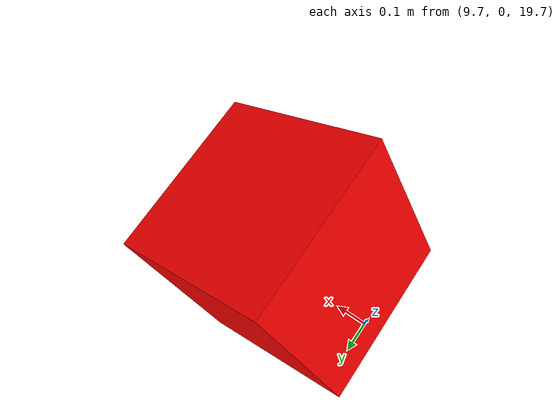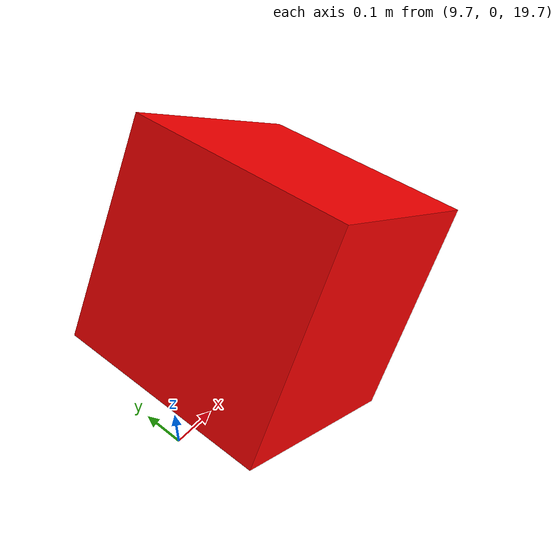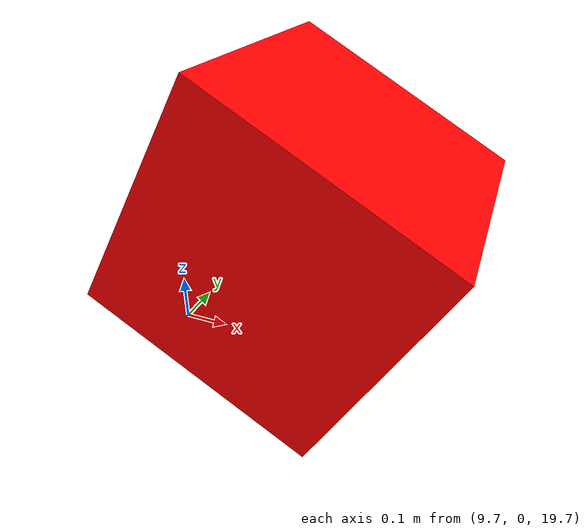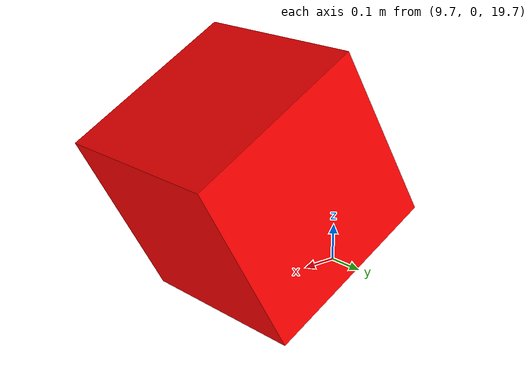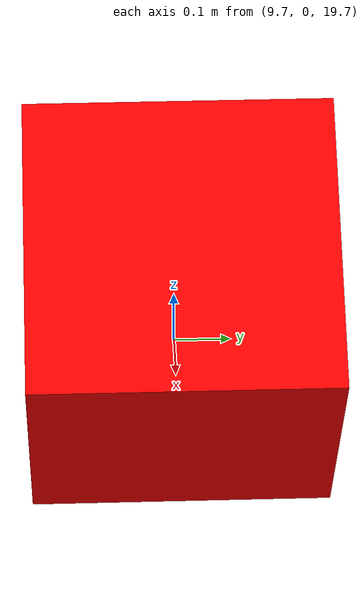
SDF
<sdf version='1.6'>
  <world name='default'>

    <!-- A global light source -->
    <light type="directional" name="sun">
      <cast_shadows>false</cast_shadows>
      <pose>50 0 50 0 0 0</pose>
      <diffuse>0.8 0.8 0.8 1</diffuse>
      <specular>0.2 0.2 0.2 1</specular>
      <attenuation>
        <range>1000</range>
        <constant>0.9</constant>
        <linear>0.01</linear>
        <quadratic>0.001</quadratic>
      </attenuation>
      <direction>-0.5 0.1 -0.9</direction>
    </light>

    <!-- Add the Ground Plane -->
    <model name="ground_plane">
      <static>true</static>
      <link name="link">
        <collision name="collision">
          <geometry>
            <plane>
              <normal>0 0 1</normal>
              <size>100 100</size>
            </plane>
          </geometry>
        </collision>
        <visual name="visual">
          <geometry>
            <plane>
              <normal>0 0 1</normal>
              <size>100 100</size>
            </plane>
          </geometry>
          <material>
            <ambient>0.8 0.8 0.8 1</ambient>
            <diffuse>0.8 0.8 0.8 1</diffuse>
            <specular>0.8 0.8 0.8 1</specular>
            <specular>0.8 0.8 0.8 1</specular>
          </material>
        </visual>
      </link>
    </model>

    <physics name="1ms" type="ignored">
      <max_step_size>0.001</max_step_size>
      <real_time_factor>1.0</real_time_factor>
    </physics>

    <gui fullscreen='0'>
      <scene>
        <ambient>0.7 0.7 0.7 1</ambient>
        <background>0.7 0.7 0.7 1</background>
        <shadows>false</shadows>
      </scene>

      <camera name='user_camera'>
        <projection_type>orthographic</projection_type>
        <pose>0.8 0.0 12.0 0 1.5708 0</pose>
        <view_controller>orbit</view_controller>
      </camera>
    </gui>

    <model name="top_down_camera">
      <static>true</static>
      <pose>10 0 20 0 2.0944 0</pose>
      <link name="link">
        <sensor name="camera" type="camera">
            <camera>
              <horizontal_fov>1.047</horizontal_fov>
              <image>
                <width>3840</width>
                <height>2160</height>
                <format>R8G8B8</format>
              </image>
              <clip>
                <near>0.1</near>
                <far>100</far>
              </clip>
              <save enabled="true">
                <path>/tmp/top_down_camera</path>
              </save>
            </camera>
            <always_on>1</always_on>
            <update_rate>30</update_rate>
            <visualize>true</visualize>
          </sensor>

        <!-- Visual representation of the camera -->
        <visual name="camera_visual">
          <geometry>
            <!-- Define a box geometry for the camera visualization -->
            <box>
              <!-- Adjust the size (width, depth, height) as needed -->
              <size>0.5 0.5 0.5</size>
            </box>
          </geometry>
          <!-- Set the color of the camera visualization -->
          <material>
            <ambient>1 0 0 1</ambient> <!-- Red color -->
            <diffuse>1 0 0 1</diffuse>
            <specular>1 0 0 1</specular>
            <emissive>1 0 0 1</emissive>
          </material>
        </visual>
      </link>

      <plugin filename="libgazebo_ros_camera.so" name="camera_controller">
        <alwaysOn>true</alwaysOn>
        <updateRate>30.0</updateRate>
        <cameraName>camera</cameraName>
        <imageTopicName>/top_down_camera/image_raw</imageTopicName>
        <cameraInfoTopicName>/top_down_camera/camera_info</cameraInfoTopicName>
        <frameName>camera</frameName>
      </plugin>
    </model>

  </world>
</sdf>
